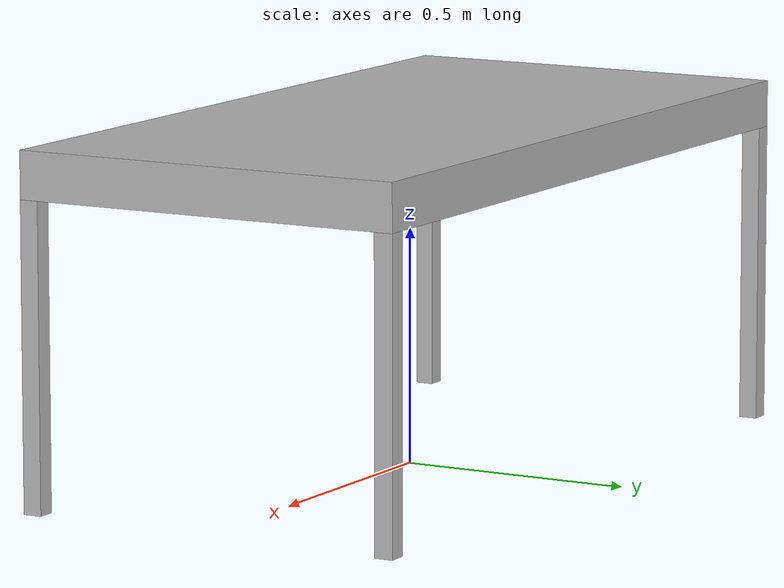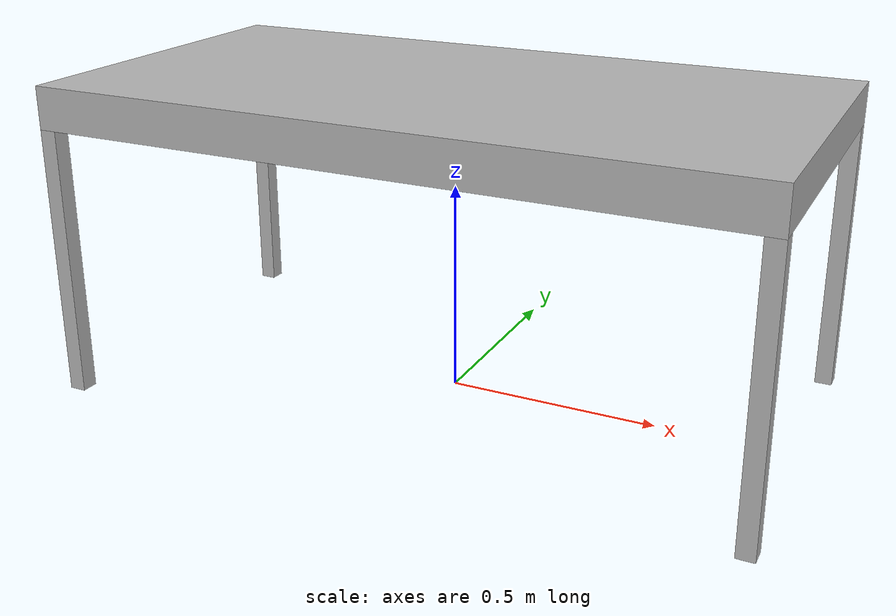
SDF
<?xml version="1.0" ?>
<sdf version="1.6">
  <model name="impuls/puck_table"  type="table">
    <static>true</static>
    <link name="1_link">
      <collision name="1_col">
        <geometry>
          <box>
            <size>1.65 0.85 0.1</size>
          </box>
        </geometry>
      </collision>
      <visual name="1_vis">
        <geometry>
          <box>
            <size>1.65 0.85 0.1</size>
          </box>
        </geometry>
      </visual>
      <pose>0.0 0.0 0.69 0 0 0</pose>
    </link>
    <link name="2_link">
      <collision name="2_col">
        <geometry>
          <box>
            <size>0.04 0.04 0.64</size>
          </box>
        </geometry>
      </collision>
      <visual name="2_vis">
        <geometry>
          <box>
            <size>0.04 0.04 0.64</size>
          </box>
        </geometry>
      </visual>
      <pose>-0.805 -0.405 0.32 0 0 0</pose>
    </link>
    <link name="3_link">
      <collision name="3_col">
        <geometry>
          <box>
            <size>0.04 0.04 0.64</size>
          </box>
        </geometry>
      </collision>
      <visual name="3_vis">
        <geometry>
          <box>
            <size>0.04 0.04 0.64</size>
          </box>
        </geometry>
      </visual>
      <pose>0.805 -0.405 0.32 0 0 0</pose>
    </link>
    <link name="4_link">
      <collision name="4_col">
        <geometry>
          <box>
            <size>0.04 0.04 0.64</size>
          </box>
        </geometry>
      </collision>
      <visual name="4_vis">
        <geometry>
          <box>
            <size>0.04 0.04 0.64</size>
          </box>
        </geometry>
      </visual>
      <pose>-0.805 0.405 0.32 0 0 0</pose>
    </link>
    <link name="5_link">
      <collision name="5_col">
        <geometry>
          <box>
            <size>0.04 0.04 0.64</size>
          </box>
        </geometry>
      </collision>
      <visual name="5_vis">
        <geometry>
          <box>
            <size>0.04 0.04 0.64</size>
          </box>
        </geometry>
      </visual>
      <pose>0.805 0.405 0.32 0 0 0</pose>
    </link>
    <link name="on_top_of">
      <virtual_volume name="on_top_of_vv">
        <geometry>
          <box>
            <size>1.63 0.79 0.25</size>
          </box>
        </geometry>
        <pose>0.0 0.0 0.885 0 0 0</pose>
      </virtual_volume>
    </link>
    <link name="in_front_of">
      <virtual_volume name="in_front_of_vv">
        <geometry>
          <box>
            <size>0.5 0.65 0.01</size>
          </box>
        </geometry>
        <pose>1.225 0.0 0.005 0 0 0</pose>
      </virtual_volume>
    </link>
  </model>
</sdf>
